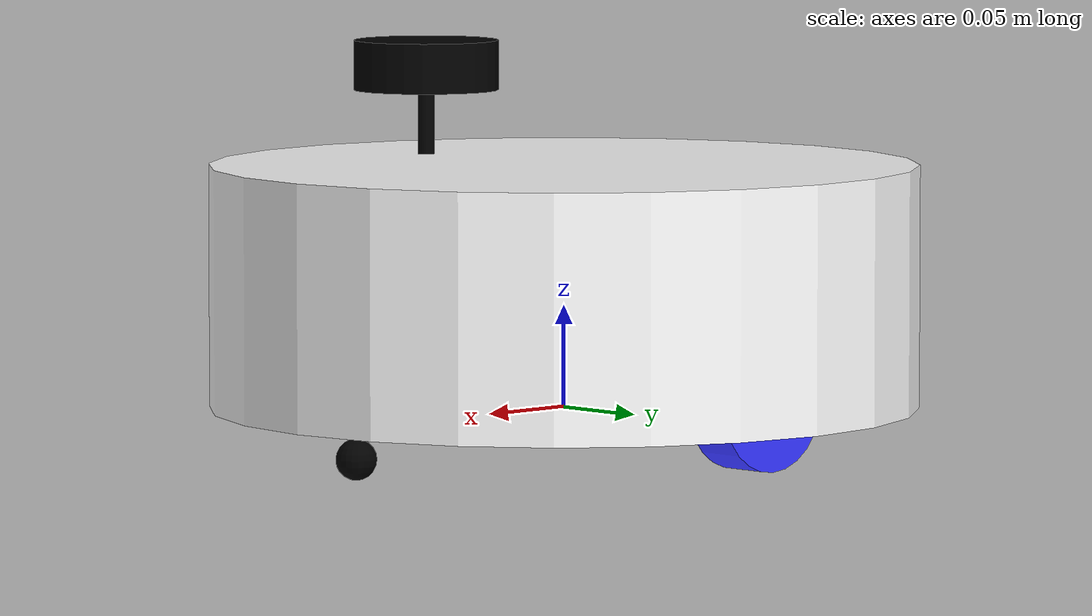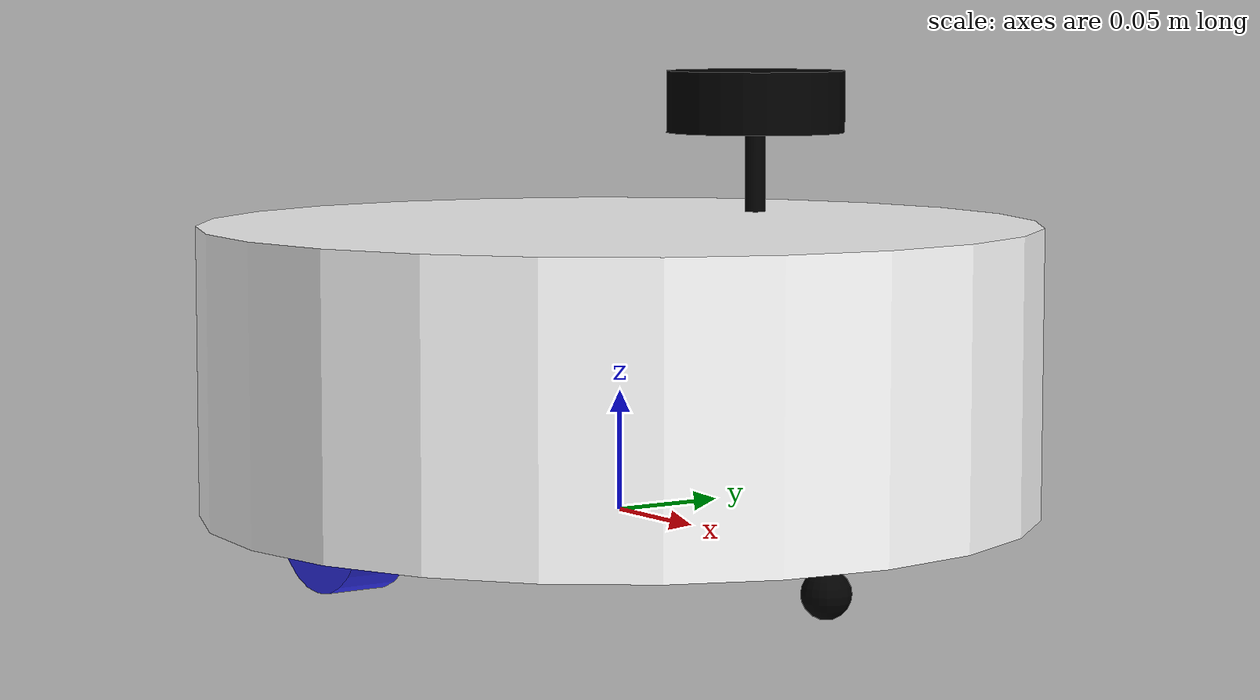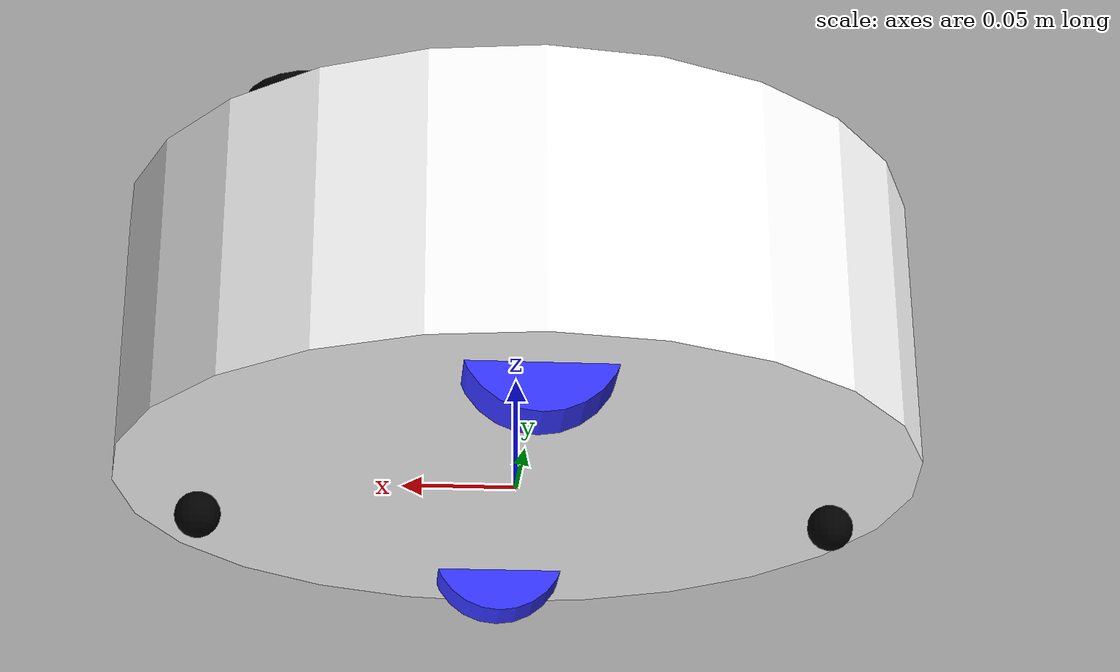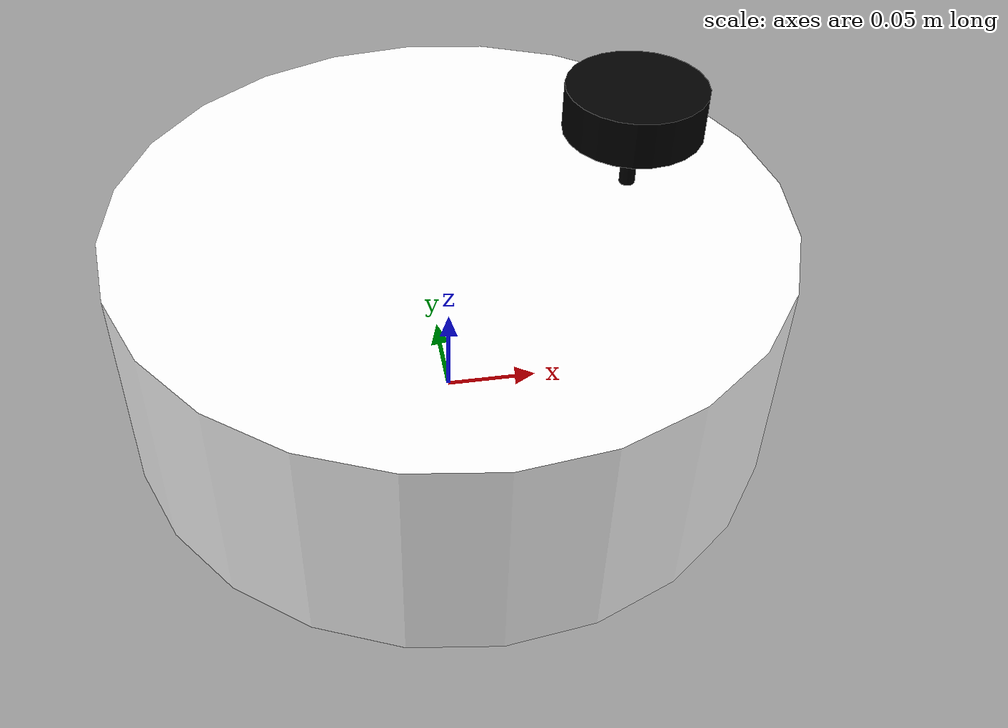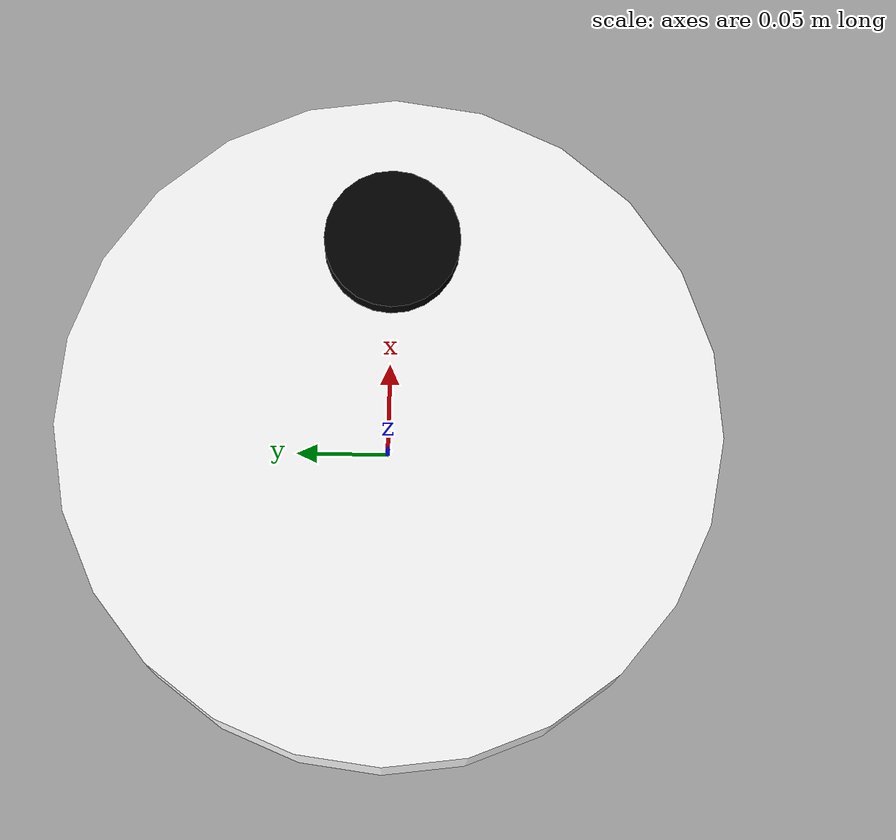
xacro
<?xml version="1.0"?>
<robot xmlns:xacro="http://www.ros.org/wiki/xacro"  name="robot">

    <xacro:include filename="robot_core.xacro" />
    <xacro:include filename="lidar.xacro" />

</robot>

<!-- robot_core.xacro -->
<robot xmlns:xacro="http://www.ros.org/wiki/xacro" >

    <xacro:include filename="inertial_macros.xacro"/>

    <xacro:property name="chassis_radius" value="0.175"/> <!-- R = 175mm-->
    <xacro:property name="chassis_height" value="0.12"/> <!-- h = 120mm-->
    <xacro:property name="chassis_mass" value="1.0"/>
    <xacro:property name="wheel_radius" value="0.0325"/> <!-- R = 32.5mm-->
    <xacro:property name="wheel_thickness" value="0.025"/> <!-- h = 25mm-->
    <xacro:property name="wheel_mass" value="0.05"/>
    <xacro:property name="wheel_offset_x" value="0.175"/> <!-- x = 175mm-->
    <xacro:property name="wheel_offset_y" value="0.133"/> <!-- y = 120mm + 12.5mm + 0.5mm-->
    <xacro:property name="wheel_offset_z" value="0.0125"/> <!-- z = 12.5mm-->
    <xacro:property name="caster_wheel_radius" value="0.01"/>  <!-- R = 10mm-->
    <xacro:property name="caster_wheel_mass" value="0.01"/>
    <xacro:property name="caster_wheel_offset_x" value="0.3125"/> <!-- x = 137.5 + 175mm-->
    <xacro:property name="caster_wheel_offset_z" value="-0.015"/> <!-- z = 15mm-->

    <material name="white">
        <color rgba="1 1 1 1" />
    </material>

    <material name="orange">
        <color rgba="1 0.3 0.1 1"/>
    </material>

    <material name="blue">
        <color rgba="0.2 0.2 1 1"/>
    </material>

    <material name="black">
        <color rgba="0 0 0 1"/>
    </material>

    <material name="red">
        <color rgba="1 0 0 1"/>
    </material>

    <!-- BASE LINK -->

    <link name="base_link">

    </link>

    <!-- CHASSIS LINK -->

    <joint name="chassis_joint" type="fixed">
        <parent link="base_link"/>
        <child link="chassis"/>
        <origin xyz="-${wheel_offset_x} 0 0"/>
    </joint>

    <link name="chassis">
        <visual>
            <origin xyz="${chassis_radius} 0 ${chassis_height/2}"/>
            <geometry>
                <cylinder radius="${chassis_radius}" length="${chassis_height}"/>
            </geometry>
            <material name="white"/>
        </visual>
        <collision>
            <origin xyz="${chassis_radius} 0 ${chassis_height/2}"/>
            <geometry>
                <cylinder radius="${chassis_radius}" length="${chassis_height}"/>
            </geometry>
        </collision>
        <xacro:inertial_cylinder mass="${chassis_mass}" length="${chassis_height}" radius="${chassis_radius}">
            <origin xyz="${chassis_radius} 0 ${chassis_height/2}" rpy="0 0 0"/>
        </xacro:inertial_cylinder>
    </link>

    <!-- LEFT WHEEL LINK -->

    <joint name="left_wheel_joint" type="continuous">
        <parent link="base_link"/>
        <child link="left_wheel"/>
        <origin xyz="0 ${wheel_offset_y} ${wheel_offset_z}" rpy="-${pi/2} 0 0" />
        <axis xyz="0 0 1"/>
    </joint>

    <link name="left_wheel">
        <visual>
            <geometry>
                <cylinder radius="${wheel_radius}" length="${wheel_thickness}"/>
            </geometry>
            <material name="blue"/>
        </visual>
        <collision>
            <geometry>
                <sphere radius="${wheel_radius}"/>
            </geometry>
        </collision>
        <xacro:inertial_cylinder mass="${wheel_mass}" length="${wheel_thickness}" radius="${wheel_radius}">
            <origin xyz="0 0 0" rpy="0 0 0"/>
        </xacro:inertial_cylinder>
    </link>

    <!-- RIGHT WHEEL LINK -->

   <joint name="right_wheel_joint" type="continuous">
        <parent link="base_link"/>
        <child link="right_wheel"/>
        <origin xyz="0 -${wheel_offset_y} ${wheel_offset_z}" rpy="${pi/2} 0 0" />
        <axis xyz="0 0 -1"/>
    </joint>

    <link name="right_wheel">
        <visual>
            <geometry>
                <cylinder radius="${wheel_radius}" length="${wheel_thickness}"/>
            </geometry>
            <material name="blue"/>
        </visual>
        <collision>
            <geometry>
                <sphere radius="${wheel_radius}"/>
            </geometry>
        </collision>
        <xacro:inertial_cylinder mass="${wheel_mass}" length="${wheel_thickness}" radius="${wheel_radius}">
            <origin xyz="0 0 0" rpy="0 0 0"/>
        </xacro:inertial_cylinder>
    </link>

    <!-- CASTER WHEEL LINK -->

    <joint name="caster_before_wheel_joint" type="fixed">
        <parent link="chassis"/>
        <child link="caster_before_wheel"/>
        <origin xyz="${caster_wheel_offset_x} 0 ${caster_wheel_offset_z}"/>
    </joint>

    <link name="caster_before_wheel">
        <visual>
            <geometry>
                <sphere radius="${caster_wheel_radius}"/>
            </geometry>
            <material name="black"/>
        </visual>
        <collision>
            <geometry>
                <sphere radius="${caster_wheel_radius}"/>
            </geometry>
        </collision>
        <xacro:inertial_sphere mass="${caster_wheel_mass}" radius="${caster_wheel_radius}">
            <origin xyz="0 0 0" rpy="0 0 0"/>
        </xacro:inertial_sphere>
    </link>

    <joint name="caster_after_wheel_joint" type="fixed">
        <parent link="chassis"/>
        <child link="caster_after_wheel"/>
        <origin xyz="0.0375 0 ${caster_wheel_offset_z}"/>
    </joint>

    <link name="caster_after_wheel">
        <visual>
            <geometry>
                <sphere radius="${caster_wheel_radius}"/>
            </geometry>
            <material name="black"/>
        </visual>
        <collision>
            <geometry>
                <sphere radius="${caster_wheel_radius}"/>
            </geometry>
        </collision>
        <xacro:inertial_sphere mass="${caster_wheel_mass}" radius="${caster_wheel_radius}">
            <origin xyz="0 0 0" rpy="0 0 0"/>
        </xacro:inertial_sphere>
    </link>

</robot>

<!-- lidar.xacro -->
<robot xmlns:xacro="http://www.ros.org/wiki/xacro" >

    <joint name="laser_joint" type="fixed">
        <parent link="chassis"/>
        <child link="laser_frame"/>
        <origin xyz="0.2666 0 0.173" rpy="0 0 0"/> <!-- h = 125mm + 5mm + 31mm + 12mm -->
    </joint>

    <link name="laser_frame">
        <visual>
            <geometry>
                <cylinder radius="0.035" length="0.024"/>
            </geometry>
            <material name="black"/>
        </visual>
         <visual>
            <origin xyz="0 0 -0.0275"/>
            <geometry>
                <cylinder radius="0.004" length="0.031"/>
            </geometry>
            <material name="black"/>
        </visual>
        <collision>
            <geometry>
                <cylinder radius="0.035" length="0.024"/>
            </geometry>
        </collision>
        <xacro:inertial_cylinder mass="0.1" length="0.024" radius="0.035">
            <origin xyz="0 0 0" rpy="0 0 0"/>
        </xacro:inertial_cylinder>
    </link>

</robot>
